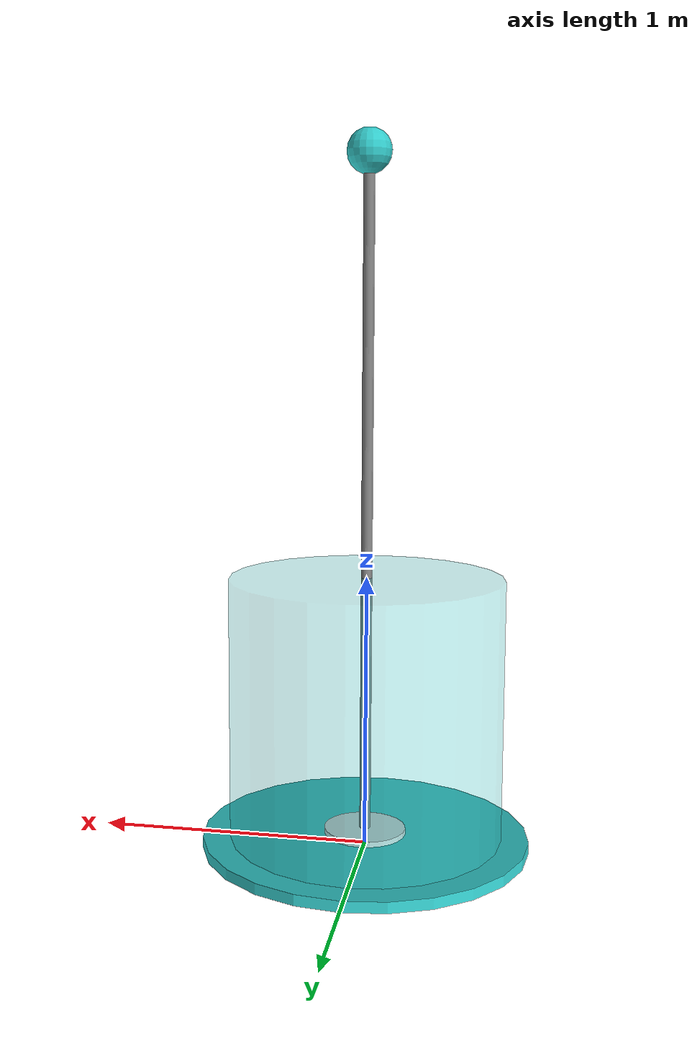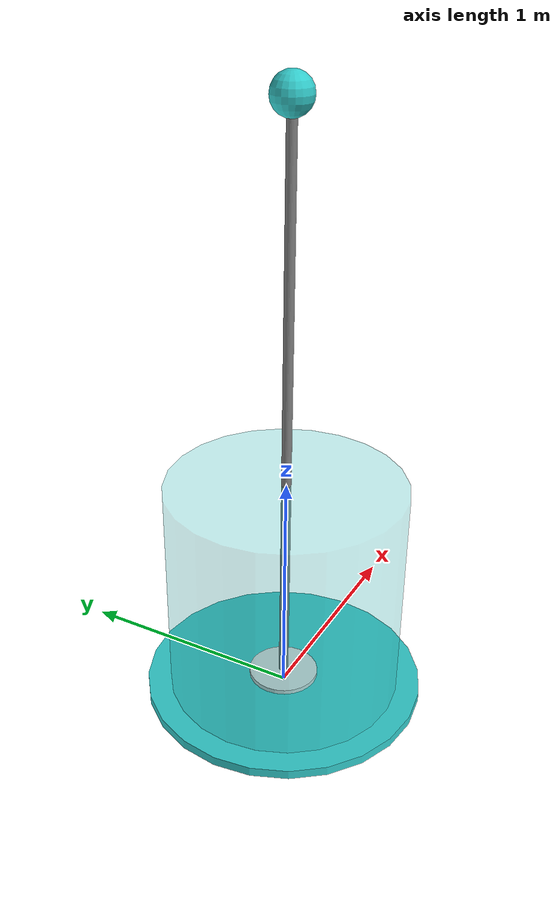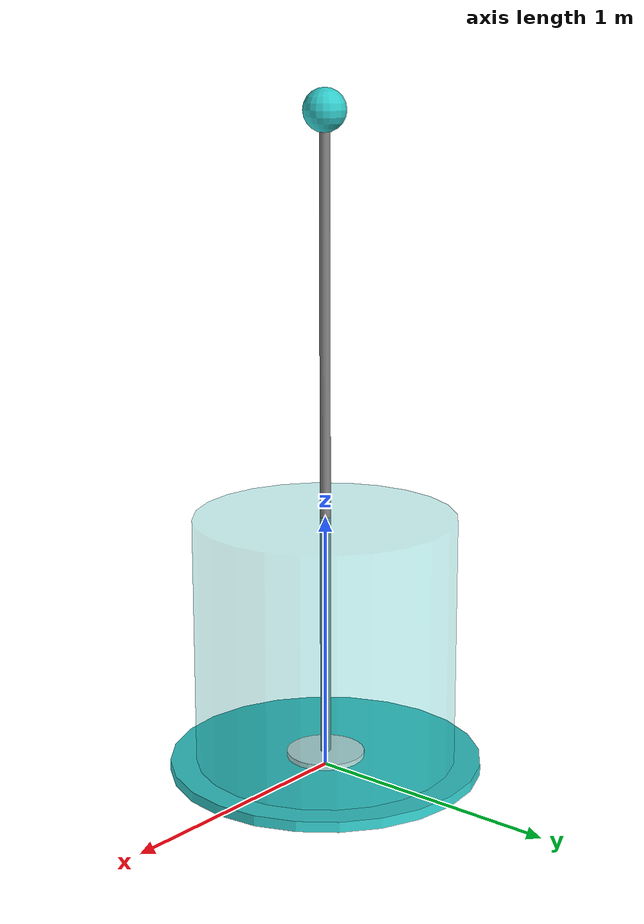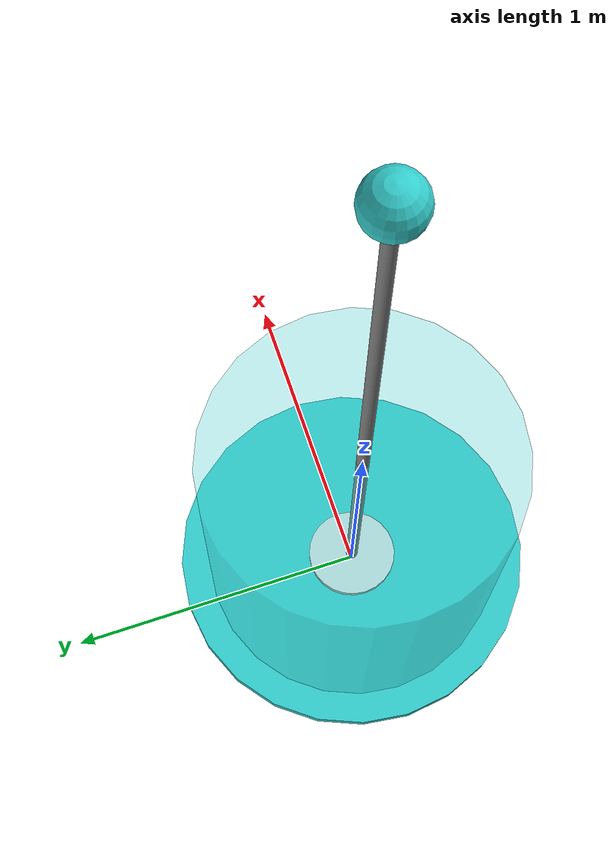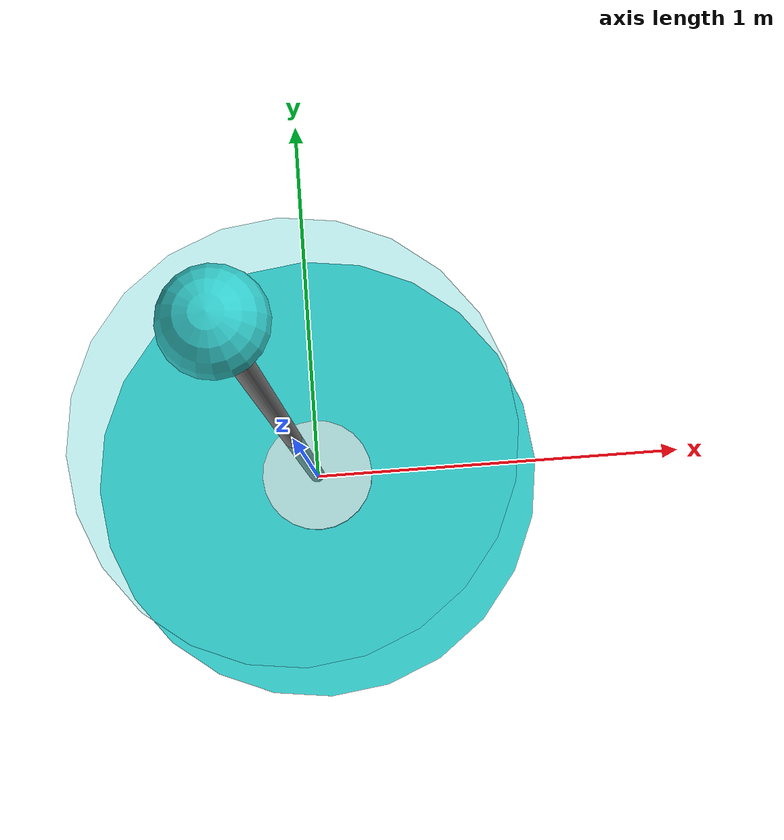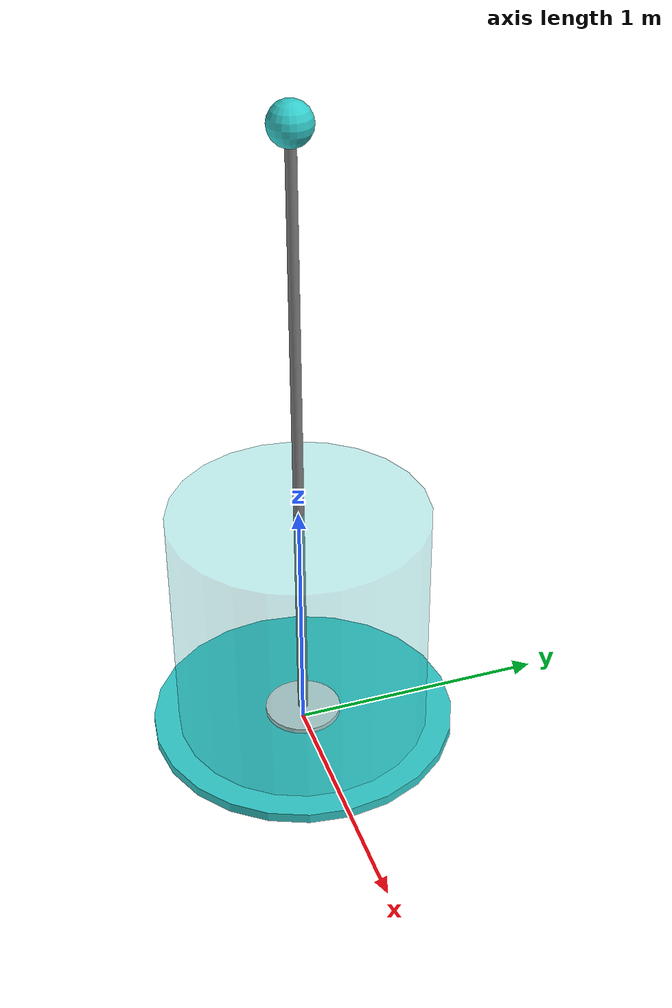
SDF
<?xml version="1.0"?>
<sdf version="1.6">
  <model name="waypoint_marker">
    <static>true</static>

    <link name="marker_link">
      <!-- Target zone cylinder (semi-transparent) -->
      <visual name="target_zone">
        <pose>0 0 0.5 0 0 0</pose>
        <geometry>
          <cylinder>
            <radius>0.5</radius>
            <length>1.0</length>
          </cylinder>
        </geometry>
        <material>
          <ambient>0.2 0.8 0.8 0.3</ambient>
          <diffuse>0.2 0.8 0.8 0.3</diffuse>
        </material>
        <transparency>0.7</transparency>
      </visual>

      <!-- Base ring -->
      <visual name="base_ring">
        <pose>0 0 0.02 0 0 0</pose>
        <geometry>
          <cylinder>
            <radius>0.6</radius>
            <length>0.04</length>
          </cylinder>
        </geometry>
        <material>
          <ambient>0.2 0.8 0.8 1</ambient>
          <diffuse>0.2 0.8 0.8 1</diffuse>
          <specular>0.5 0.5 0.5 1</specular>
        </material>
      </visual>

      <!-- Inner marker -->
      <visual name="inner_ring">
        <pose>0 0 0.03 0 0 0</pose>
        <geometry>
          <cylinder>
            <radius>0.15</radius>
            <length>0.06</length>
          </cylinder>
        </geometry>
        <material>
          <ambient>0.9 0.9 0.9 1</ambient>
          <diffuse>0.9 0.9 0.9 1</diffuse>
        </material>
      </visual>

      <!-- Height indicator pole -->
      <visual name="height_pole">
        <pose>0 0 1.25 0 0 0</pose>
        <geometry>
          <cylinder>
            <radius>0.02</radius>
            <length>2.5</length>
          </cylinder>
        </geometry>
        <material>
          <ambient>0.5 0.5 0.5 1</ambient>
          <diffuse>0.5 0.5 0.5 1</diffuse>
        </material>
      </visual>

      <!-- Top sphere -->
      <visual name="top_sphere">
        <pose>0 0 2.5 0 0 0</pose>
        <geometry>
          <sphere><radius>0.08</radius></sphere>
        </geometry>
        <material>
          <ambient>0.2 0.8 0.8 1</ambient>
          <diffuse>0.2 0.8 0.8 1</diffuse>
        </material>
      </visual>
    </link>

  </model>
</sdf>
